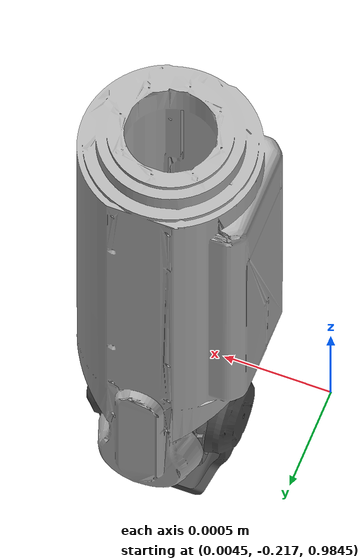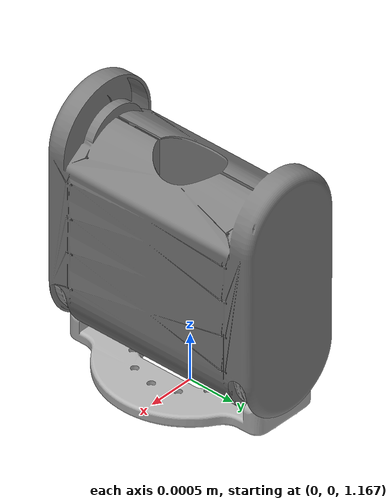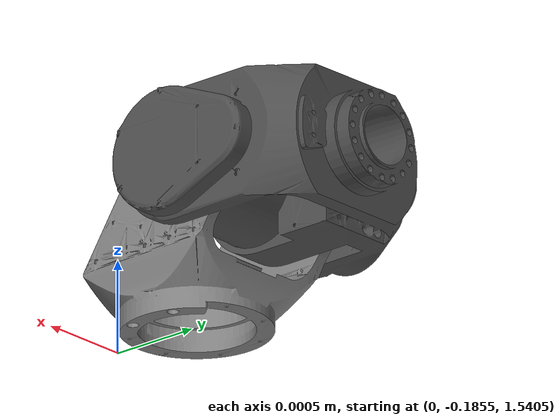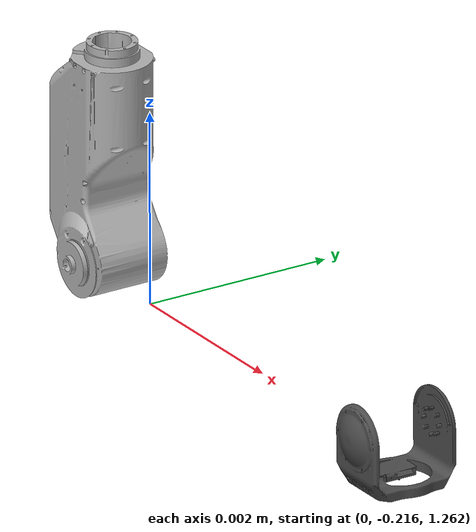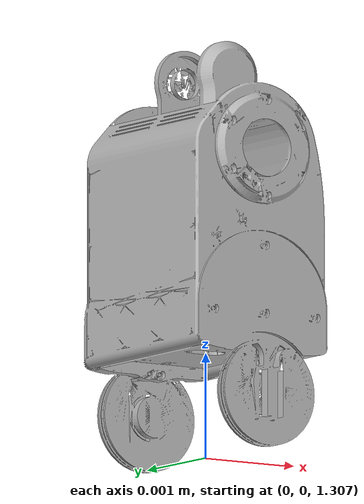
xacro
<?xml version="1.0"?>
<robot xmlns:sensor="http://playerstage.sourceforge.net/gazebo/xmlschema/#sensor"
       xmlns:controller="http://playerstage.sourceforge.net/gazebo/xmlschema/#controller"
       xmlns:interface="http://playerstage.sourceforge.net/gazebo/xmlschema/#interface"
       xmlns:xacro="http://playerstage.sourceforge.net/gazebo/xmlschema/#interface"
       name="uta" >

 <property name="M_PI" value="3.1415926535897931" />
 <property name="R_ARM" value="ma16" />
 <property name="R_HAND" value="mh12" />
 <property name="TORSO" value="mt5" />

 <property name="MESH" value="meka_description/meshes/mid_res" />
 <property name="MESH_COLL" value="meka_description/meshes/low_res" />

<!-- generic simulator_gazebo plugins for starting mechanism control, ros time, ros battery -->
  <include filename="$(find meka_description)/gazebo/gazebo.urdf.xacro" />
  <include filename="$(find meka_description)/transmissions/uta.transmission.xacro" />

<!-- Meka Arm -->
  <include filename="$(find meka_description)/urdf/A2R3_r_arm_defs.urdf.xacro" />
<!-- Meka Hand -->
  <include filename="$(find meka_description)/urdf/H2R2_r_hand_defs.urdf.xacro" />

  <!-- john added transmissions -->
  <include filename="$(find meka_description)/transmissions/A2R3_r_arm_defs.transmission.xacro" />
  <include filename="$(find meka_description)/transmissions/H2R2_r_hand_defs.transmission.xacro" />

   <property name="M_PI" value="3.1415926535897931" />
  <material name="GreyA"> <!-- darkest -->
    <color rgba="0.3 0.3 0.3 1.0"/>
  </material>

  <material name="GreyB">
    <color rgba="0.5 0.5 0.5 1.0"/>
  </material>

  <material name="GreyC">
    <color rgba="0.7 0.7 0.7 1.0"/>
  </material>

 <m3_r_arm side="r" reflect="1" parent="upper">
    <origin xyz="0.0 -0.18465 0.2337" rpy="0 0 0" />
  </m3_r_arm>

  <!-- john added transmissions -->
  <m3_r_arm_transmission side="r" reflect="1" parent="upper"/>
  <m3_r_hand_transmission/>

  <link name="world" />

  <!-- Solid Base -->
  <joint name="base_joint" type="fixed">
    <origin xyz="0 0 1" rpy="0 0 0" />
    <parent link="world" />
    <child link="panplate" />
    <dynamics damping="1.0"/>
  </joint>
  <link name="panplate">
    <inertial>
      <mass value="1000" />
      <origin xyz="0 0 0" />
      <inertia ixx="100"  ixy="0"  ixz="0" iyy="100" iyz="0" izz="100" />
    </inertial>
    <visual>
      <material name="GreyA" />
      <origin xyz="0 0 0" rpy="0 0 0 " />
      <geometry name="panplate_geom">
        <mesh filename="package://${MESH}/T2R3/T2R3_TJ0_base.dae" />
      </geometry>
    </visual>
    <collision>
      <origin xyz="0 0 0" rpy="0.0 0.0 0.0 " />
      <geometry name="base_collision_geom">
        <mesh filename="package://${MESH_COLL}/T2R3/T2R3_TJ0_base.stl" />
      </geometry>
    </collision>
  </link>
  <joint name="m3joint_${TORSO}_j0" type="continuous">
    <axis xyz="0 0 1"/>
    <origin xyz="0 0 0.1678" rpy="0 0 0" />
    <parent link="panplate" />
    <child link="torso" />
    <limit effort="25" velocity="${25.0*M_PI/180}" lower="${-120*M_PI/180.0}" upper="${120*M_PI/180}" />
    <dynamics damping="1.0"/>
  </joint>
  <link name="torso">
    <inertial>
      <mass value="4.411" />
      <origin xyz="0.00011774 0.0038073 -0.0522753" />
      <inertia ixx="0.026360"  ixy="-0.0000024"  ixz="-0.0000508" iyy="0.0134266" iyz="0.0006839" izz="0.0229879" />
    </inertial>
    <visual>
      <material name="GreyC" />
      <origin xyz="0 0 0" rpy="0 0 0 " />
      <geometry name="torso_geom">
        <mesh filename="package://${MESH}/T2R3/T2R3_TJ1_pan.dae" />
      </geometry>
    </visual>
    <collision>
      <origin xyz="0 0 0" rpy="0.0 0.0 0.0 " />
      <geometry name="torso_collision_geom">
        <mesh filename="package://${MESH_COLL}/T2R3/T2R3_TJ1_pan.stl" />
      </geometry>
    </collision>
  </link>

  <joint name="m3joint_${TORSO}_j1" type="continuous">
    <axis xyz="0 1 0"/>
    <origin xyz="0 0 0" rpy="0 0 0" />
    <parent link="torso" />
    <child link="mid" />
    <limit effort="200" velocity="${10.0*M_PI/180}" lower="${-11.79349*M_PI/180}" upper="${53.29349*M_PI/180}" />
    <dynamics damping="1.0"/>
  </joint>
  <link name="mid">
    <inertial>
      <mass value="4.934" />
      <origin xyz="0.001179 -0.002993 0.046259"/>
      <inertia ixx="0.041106"
      iyy="0.026009"
      izz="0.025902"
      ixy="0.000135"
      ixz="0.000505"
      iyz="0.002396" />
    </inertial>
    <visual>
      <material name="GreyB" />
      <origin xyz="0 0 0" rpy="0 0 0" />
      <geometry name="mid_geom">
        <mesh filename="package://${MESH}/T2R3/T2R3_TJ2.dae" />
      </geometry>
    </visual>
    <collision>
      <origin xyz="0 0 0" rpy="0.0 0.0 0.0 " />
      <geometry name="mid_collision_geom">
        <mesh filename="package://${MESH_COLL}/T2R3/T2R3_TJ2.stl" />
      </geometry>
    </collision>
  </link>

  <joint name="m3joint_slave_${TORSO}_j2" type="continuous">
    <axis xyz="0 1 0"/>
    <origin xyz="0 0 0.1397" rpy="0 0 0" />
    <parent link="mid" />
    <child link="upper" />
    <limit effort="200" velocity="${10.0*M_PI/180}" lower="${-11.79349*M_PI/180}" upper="${53.29349*M_PI/180}" />
    <dynamics damping="1.0"/>
  </joint>

  <link name="upper">
    <inertial>
      <mass value="6.534" /> <!-- torso with motors, bottom pullies, and neck mount -->
      <origin xyz="0.008700 0.011470 0.129740"/>
      <inertia ixx="0.069760"
      iyy="0.048010"
      izz="0.040590"
      ixy="-0.000400"
      ixz="0.001300"
      iyz="0.005100" />
    </inertial>
    <visual>
      <material name="GreyC" />
      <origin xyz="0 0 0" rpy="0 0 0" />
      <geometry name="upper_geom">
        <mesh filename="package://${MESH}/T2R3/T2R3_TJ3_chest_waist_neck.dae" />
      </geometry>
    </visual>
    <collision>
      <origin xyz="0 0 0" rpy="0.0 0.0 0.0 " />
      <geometry name="upper_collision_geom">
        <mesh filename="package://${MESH_COLL}/T2R3/T2R3_TJ3_chest_waist_neck.stl" />
      </geometry>
    </collision>
  </link>

</robot>

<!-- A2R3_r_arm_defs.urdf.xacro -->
<robot xmlns:sensor="http://playerstage.sourceforge.net/gazebo/xmlschema/#sensor"
       xmlns:controller="http://playerstage.sourceforge.net/gazebo/xmlschema/#controller"
       xmlns:interface="http://playerstage.sourceforge.net/gazebo/xmlschema/#interface">

  <property name="M_PI" value="3.1415926535897931" />

  <macro name="m3_r_shoulder" params="side parent reflect *origin">

    <!-- Shoulder pan -->
    <joint name="m3joint_${R_ARM}_j0" type="revolute">
      <axis xyz="0 -1 0" />
      <insert_block name="origin" /> <!-- transform from parent link to this joint frame -->
      <parent link="${parent}"/>
      <child link="shoulderupper_RIGHT"/>
      <limit effort="40" velocity="${30.0*M_PI/180}" lower="${-80*M_PI/180}" upper="${200*M_PI/180}" />
      <dynamics damping="1.0"/>
    </joint>
    <link name="shoulderupper_RIGHT">
      <inertial>
        <mass value="2.0310" />
	<origin xyz="-0.010946 0.025127 0.000022"/>
	<inertia ixx="0.003461"
	iyy="0.003097"
	izz="0.005416"
	ixy="0.000428"
	ixz="0.000002"
	iyz="0.000000" />
      </inertial>

      <visual>
	      <material name="GreyA" />
	      <origin xyz="0 0 0" rpy="0 0 0 " />
	      <geometry name="r_shoulder_geom">
		      <mesh filename="package://${MESH}/A2R3/A2R3_RT1_shoulderRoll.dae" />
	      </geometry>
      </visual>

      <collision>
	      <origin xyz="0 0 0" rpy="0.0 0.0 0.0 " />
	      <geometry name="r_shoulder_collision_geom">
		      <mesh filename="package://${MESH_COLL}/A2R3/A2R3_RT1_shoulderRoll.stl" />
	      </geometry>
      </collision>
    </link>

    <joint name="m3joint_${R_ARM}_j1" type="revolute">
      <axis xyz="-1 0 0"/>
     <limit effort="40" velocity="${30*M_PI/180}" lower="${-24*M_PI/180}" upper="${150*M_PI/180}" />
      <origin xyz="0 0 0" rpy="0 0 0" />
      <parent link="shoulderupper_RIGHT"/>
      <child link="shoulderpitch_RIGHT"/>
      <dynamics damping="1.0"/>
    </joint>
    <link name="shoulderpitch_RIGHT">

      <inertial>
        <mass value="0.566" />
        <origin xyz="0.000944 -0.026331 -0.043257"/>
	<inertia ixx="0.000754"
	iyy="0.000921"
	izz="0.000834"
	ixy="0.000015"
	ixz="0.000014"
	iyz="0.000142" />
      </inertial>

      <visual>
	      <material name="GreyB" />
	      <origin xyz="0 0 0" rpy="0 0 0 " />
	      <geometry name="shoulderpitch_RIGHT">
		      <mesh filename="package://${MESH}/A2R3/A2R3_RT2_shoulderPitch.dae" />
	      </geometry>
      </visual>

      <collision>
	      <origin xyz="0 0 0" rpy="0.0 0.0 0.0 " />
	      <geometry name="shoulderpitch_RIGHT_collision">
		      <mesh filename="package://${MESH_COLL}/A2R3/A2R3_RT2_shoulderPitch.stl" />
	      </geometry>
      </collision>
    </link>

    <joint name="m3joint_${R_ARM}_j2" type="revolute">
      <axis xyz="0 0 -1" />
      <origin xyz="0 -0.03175 -0.27857" rpy="0 0 0" />
      <parent link="shoulderpitch_RIGHT" />
      <child link="bicep_RIGHT"/>
      <limit effort="20" velocity="${50*M_PI/180}" lower="${-85*M_PI/180}" upper="${85*M_PI/180}" />
      <dynamics damping="1.0"/>
    </joint>
    <link name="bicep_RIGHT">
      <inertial>
        <mass value="2.296" />
        <origin xyz="-0.005767 0.084539 0.001385"/>
	<inertia ixx="0.013031"
	iyy="0.002070"
	izz="0.013173"
	ixy="-0.000564"
	ixz="-0.000077"
	iyz="0.000162" />
      </inertial>
      <visual>
	      <material name="GreyC" />
	      <origin xyz="0 0 0" rpy="0 0 0 " />
	      <geometry name="bicep_RIGHT_geom">
		      <mesh filename="package://${MESH}/A2R3/A2R3_RT3_bicep.dae" />
	      </geometry>
      </visual>

      <collision>
	      <origin xyz="0 0 0" rpy="0.0 0.0 0.0 " />
	      <geometry name="bicep_RIGHT_geom_collision">
		      <mesh filename="package://${MESH_COLL}/A2R3/A2R3_RT3_bicep.stl" />
	      </geometry>
      </collision>
    </link>

  </macro>

  <!-- ============================   Upper Arm   ============================ -->

  <macro name="m3_r_upper_arm" params="side parent reflect">

	  <joint name="m3joint_${R_ARM}_j3" type="revolute">
		  <axis xyz="0 -1 0" />
		  <origin xyz="0.00502 0  0" rpy="0 0 0" />
      <parent link="${parent}"/>
      <child link="elbowclevis_RIGHT"/>
	<limit effort="20" velocity="${50*M_PI/180}" lower="${-0.278978*M_PI/180}" upper="${132.8175*M_PI/180}" />
      <dynamics damping="10.0" />
    </joint>
    <link name="elbowclevis_RIGHT">

      <inertial>
        <mass value="0.223" />
        <origin xyz="-0.000002 0.000278 -0.026124"/>
	<inertia ixx="0.000470"
	iyy="0.000233"
	izz="0.000425"
	ixy="0.000000"
	ixz="0.000000"
	iyz="0.000019" />
      </inertial>

      <visual>
	      <material name="GreyA" />
	      <origin xyz="0 0 0" rpy="0 0 0 " />
	      <geometry name="elbowclevis_RIGHT_geom">
		      <mesh filename="package://${MESH}/A2R3/A2R3_RT4_elbow.dae" />
	      </geometry>
      </visual>

      <collision>
	      <origin xyz="0 0 0" rpy="0.0 0.0 0.0 " />
	      <geometry name="elbowclevis_RIGHT_collision">
		      <mesh filename="package://${MESH_COLL}/A2R3/A2R3_RT4_elbow.stl" />
	      </geometry>
      </collision>

    </link>

    <joint name="m3joint_${R_ARM}_j4" type="revolute">
	    <axis xyz="0 0 -1" />
      <limit effort="4" velocity="${150*M_PI/180}" lower="${-49.4*M_PI/180}" upper="${229.4*M_PI/180}" />
      <origin xyz="0 0 -0.27747" rpy="0 0 0" />
      <parent link="elbowclevis_RIGHT"/>
      <child link="wrist_RIGHT"/>
      <dynamics damping="1.0"/>
    </joint>
    <link name="wrist_RIGHT">

      <inertial>
        <mass value="1.468" />
        <origin xyz="-0.004404 0.000124 0.130931"/>
	<inertia ixx="0.006099"
	iyy="0.006120"
	izz="0.001179"
	ixy="0.000004"
	ixz="-0.000043"
	iyz="0.000015" />
      </inertial>

      <visual>
	      <material name="GreyC" />
	      <origin xyz="0 0 0" rpy="0 0 0 " />
	      <geometry name="wrist_RIGHT_geom">
		      <mesh filename="package://${MESH}/A2R3/A2R3_T5_forearmRoll.dae" />
	      </geometry>
      </visual>

      <collision>
	      <origin xyz="0 0 0" rpy="0.0 0.0 0.0 " />
	      <geometry name="wrist_RIGHT_collision">
		      <mesh filename="package://${MESH_COLL}/A2R3/A2R3_T5_forearmRoll.stl" />
	      </geometry>
      </collision>
    </link>

  </macro>

  <!-- ============================   Forearm   ============================ -->

  <macro name="m3_r_forearm" params="side parent reflect">

	  <joint name="m3joint_${R_ARM}_j5" type="revolute">
      <dynamics damping="1.0" />
		  <axis xyz="0 -1 0" />
      <origin xyz="0 0 0" rpy="0 0 0" />
      <parent link="${parent}"/>
      <child link="w_differential_RIGHT"/>
	<limit effort="8" velocity="${40*M_PI/180}" lower="${-58.83*M_PI/180}" upper="${58.83*M_PI/180}" />
      <dynamics damping="1.0"/>
    </joint>
    <link name="w_differential_RIGHT">

      <inertial>
        <mass value="0.278" />
        <origin xyz="0 0 0" />
        <inertia ixx="0" ixy="0" ixz="0"
                 iyy="0" iyz="0"
                 izz="0" />
      </inertial>

      <visual>
	      <material name="GreyB" />
	      <origin xyz="0 0 0" rpy="0 0 0 " />
	      <geometry name="w_differential_RIGHT_geom">
		      <mesh filename="package://${MESH}/A2R3/A2R3_T6_wristDiff.dae" />
	      </geometry>
      </visual>

      <collision>
	      <origin xyz="0 0 0" rpy="0.0 0.0 0.0 " />
	      <geometry name="w_differential_RIGHT_collision">
		      <box size="0.01 0.01 0.01" />
	      </geometry>
      </collision>
    </link>

    <joint name="m3joint_${R_ARM}_j6" type="revolute">
	    <axis xyz="-1 0 0" />
      <limit effort="8" velocity="${40*M_PI/180}" lower="${-60*M_PI/180}" upper="${60*M_PI/180}" />
      <origin xyz="0 0 0" rpy="0 0 0" />
      <parent link="w_differential_RIGHT"/>
      <child link="handmount_RIGHT"/>
      <dynamics damping="1.0"/>
    </joint>
    <link name="handmount_RIGHT">

      <inertial>
        <mass value="0.093" />
        <origin xyz="0 0 0" />
        <inertia ixx="0" ixy="0" ixz="0"
                 iyy="0" iyz="0"
                 izz="0" />
      </inertial>

      <visual>
	      <material name="GreyA" />
	      <origin xyz="0 0 0" rpy="0 0 0 " />
	      <geometry name="handmount_RIGHT_geom">
		       <mesh filename="package://${MESH}/A2R3/A2R3_T7_wristYaw.dae" />
	      </geometry>
      </visual>

      <collision>
	      <origin xyz="0 0 0" rpy="0.0 0.0 0.0 " />
	      <geometry name="handmount_RIGHT_collision">
		      <mesh filename="package://${MESH_COLL}/A2R3/A2R3_T7_wristYaw.stl" />
	      </geometry>
      </collision>
    </link>

  </macro>

  <macro name="m3_r_arm" params="side parent reflect *origin">
    <m3_r_shoulder side="${side}" reflect="${reflect}" parent="${parent}">
      <insert_block name="origin" />
    </m3_r_shoulder>
    <m3_r_upper_arm side="${side}" reflect="${reflect}" parent="bicep_RIGHT" />
    <m3_r_forearm side="${side}" reflect="${reflect}" parent="wrist_RIGHT" />
  </macro>

</robot>
